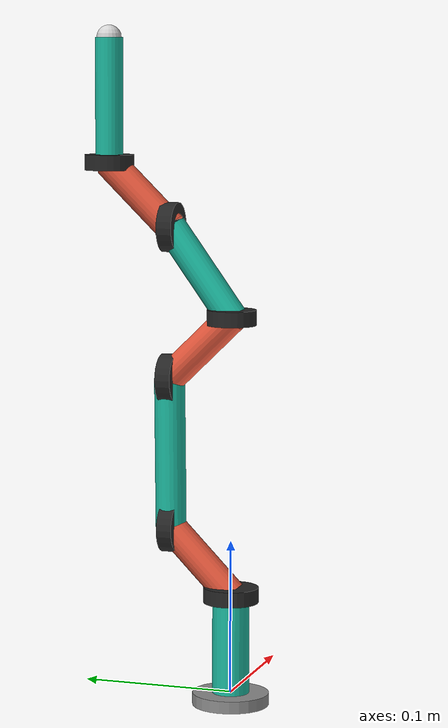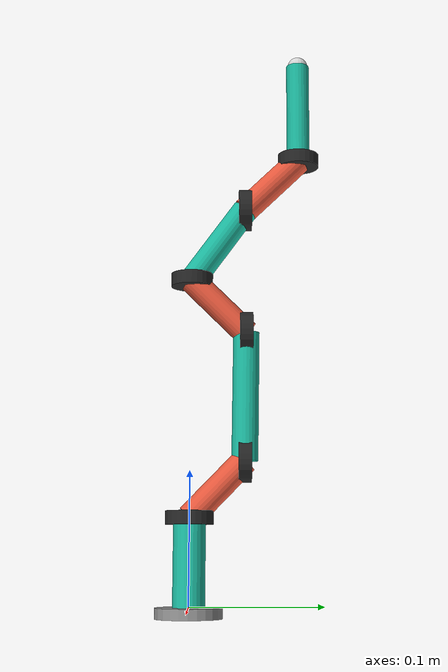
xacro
<?xml version="1.0"?>
<robot xmlns:xacro="http://www.ros.org/wiki/xacro" name="my_robot">
    <xacro:arg name="initial_positions_file" default="initial_positions.yaml" />

    <!-- Import my_robot urdf file -->
    <xacro:include filename="$(find my_robot_description)/urdf/my_robot.urdf" />

    <!-- Import control_xacro -->
    <xacro:include filename="my_robot.ros2_control.xacro" />

    <xacro:my_robot_ros2_control name="FakeSystem" initial_positions_file="$(arg initial_positions_file)"/>

</robot>

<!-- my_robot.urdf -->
<robot name="my_robot">

  <!-- ═══════════════════════════════════════════════════════════
       MATERIALS
  ═══════════════════════════════════════════════════════════ -->
  <material name="teal">   <color rgba="0.11 0.73 0.63 1.0"/> </material>
  <material name="coral">  <color rgba="0.91 0.35 0.24 1.0"/> </material>
  <material name="joint_disk"> <color rgba="0.15 0.15 0.15 1.0"/> </material>
  <material name="base_plate"> <color rgba="0.55 0.55 0.55 1.0"/> </material>
  <material name="ee_ball">    <color rgba="0.85 0.85 0.85 1.0"/> </material>

  <!-- ═══════════════════════════════════════════════════════════
       LINKS
  ═══════════════════════════════════════════════════════════ -->

  <!-- World / mounting frame -->
  <link name="base_link">
    <visual>
      <origin xyz="0 0 -0.004" rpy="0 0 0"/>
      <geometry><cylinder radius="0.025" length="0.008"/></geometry>
      <material name="base_plate"/>
    </visual>
    <collision>
      <origin xyz="0 0 -0.004" rpy="0 0 0"/>
      <geometry>
        <box size="0.05 0.05 0.008" />
      </geometry>
    </collision>
  </link>

  <link name="link0">
    <inertial>
      <mass value="0.10"/>
      <origin xyz="0 0 0.0325" rpy="0 0 0"/>
      <inertia ixx="1e-4" ixy="0" ixz="0" iyy="1e-4" iyz="0" izz="5e-5"/>
    </inertial>
    <!-- Column cylinder -->
    <visual>
      <origin xyz="0 0 0.0325" rpy="0 0 0"/>
      <geometry><cylinder radius="0.012" length="0.065"/></geometry>
      <material name="teal"/>
    </visual>
    <!-- Joint0 disk (top of column) -->
    <visual>
      <origin xyz="0 0 0.065" rpy="0 0 0"/>
      <geometry><cylinder radius="0.018" length="0.010"/></geometry>
      <material name="joint_disk"/>
    </visual>
    <collision>
      <origin xyz="0 0 0.035" rpy="0 0 0"/>
      <geometry>
        <box size="0.036 0.036 0.07" />
      </geometry>
    </collision>
  </link>

  <link name="link1">
    <inertial>
      <mass value="0.10"/>
      <origin xyz="0 0.0205 0.0210" rpy="0 0 0"/>
      <inertia ixx="1e-4" ixy="0" ixz="0" iyy="1e-4" iyz="0" izz="5e-5"/>
    </inertial>
    <!-- Arm cylinder -->
    <visual>
      <origin xyz="0 0.0205 0.0210" rpy="-0.77277 0 0"/>
      <geometry><cylinder radius="0.010" length="0.0587"/></geometry>
      <material name="coral"/>
    </visual>
    <!-- Joint1 disk — world axis is Y so disk lies in XZ plane, rpy=(π/2,0,0) -->
    <visual>
      <origin xyz="0 0.041 0.042" rpy="1.5708 0 0"/>
      <geometry><cylinder radius="0.016" length="0.010"/></geometry>
      <material name="joint_disk"/>
    </visual>
    <collision>
      <origin xyz="0 0.0205 0.0210" rpy="-0.77277 0 0"/>
      <geometry><cylinder radius="0.010" length="0.0587"/></geometry>
    </collision>
  </link>

  <link name="link2">
    <inertial>
      <mass value="0.10"/>
      <origin xyz="0 -0.0490 0.0005" rpy="0 0 0"/>
      <inertia ixx="1e-4" ixy="0" ixz="0" iyy="1e-4" iyz="0" izz="5e-5"/>
    </inertial>
    <visual>
      <origin xyz="0 -0.0490 0.0005" rpy="1.5600 0 0"/>
      <geometry><cylinder radius="0.010" length="0.0980"/></geometry>
      <material name="teal"/>
    </visual>
    <visual>
      <origin xyz="0 -0.098 0.001" rpy="0 0 0"/>
      <geometry><cylinder radius="0.016" length="0.010"/></geometry>
      <material name="joint_disk"/>
    </visual>
    <collision>
      <origin xyz="0 -0.0490 0.0005" rpy="1.5600 0 0"/>
      <geometry><cylinder radius="0.010" length="0.0980"/></geometry>
    </collision>
  </link>

  <link name="link3">
    <inertial>
      <mass value="0.10"/>
      <origin xyz="0 0.0205 0.0210" rpy="0 0 0"/>
      <inertia ixx="1e-4" ixy="0" ixz="0" iyy="1e-4" iyz="0" izz="5e-5"/>
    </inertial>
    <visual>
      <origin xyz="0 0.0205 0.0210" rpy="-0.77277 0 0"/>
      <geometry><cylinder radius="0.010" length="0.0587"/></geometry>
      <material name="coral"/>
    </visual>
    <visual>
      <origin xyz="0 0.041 0.042" rpy="1.5708 0 0"/>
      <geometry><cylinder radius="0.016" length="0.010"/></geometry>
      <material name="joint_disk"/>
    </visual>
    <collision>
      <origin xyz="0 0.0205 0.0210" rpy="-0.77277 0 0"/>
      <geometry><cylinder radius="0.010" length="0.0587"/></geometry>
    </collision>
  </link>

  <link name="link4">
    <inertial>
      <mass value="0.10"/>
      <origin xyz="0 0.0205 0.0285" rpy="0 0 0"/>
      <inertia ixx="1e-4" ixy="0" ixz="0" iyy="1e-4" iyz="0" izz="5e-5"/>
    </inertial>
    <visual>
      <origin xyz="0 0.0205 0.0285" rpy="-0.62345 0 0"/>
      <geometry><cylinder radius="0.010" length="0.0702"/></geometry>
      <material name="teal"/>
    </visual>
    <visual>
      <origin xyz="0 0.041 0.057" rpy="1.5708 0 0"/>
      <geometry><cylinder radius="0.016" length="0.010"/></geometry>
      <material name="joint_disk"/>
    </visual>
    <collision>
      <origin xyz="0 0.0205 0.0285" rpy="-0.62345 0 0"/>
      <geometry><cylinder radius="0.010" length="0.0702"/></geometry>
    </collision>
  </link>

  <link name="link5">
    <inertial>
      <mass value="0.10"/>
      <origin xyz="0 -0.0205 0.0210" rpy="0 0 0"/>
      <inertia ixx="1e-4" ixy="0" ixz="0" iyy="1e-4" iyz="0" izz="5e-5"/>
    </inertial>
    <visual>
      <origin xyz="0 -0.0205 0.0210" rpy="0.77277 0 0"/>
      <geometry><cylinder radius="0.010" length="0.0587"/></geometry>
      <material name="coral"/>
    </visual>
    <visual>
      <origin xyz="0 -0.041 0.042" rpy="1.5708 0 0"/>
      <geometry><cylinder radius="0.016" length="0.010"/></geometry>
      <material name="joint_disk"/>
    </visual>
    <collision>
      <origin xyz="0 -0.0205 0.0210" rpy="0.77277 0 0"/>
      <geometry><cylinder radius="0.010" length="0.0587"/></geometry>
    </collision>
  </link>

  <link name="link6">
    <inertial>
      <mass value="0.05"/>
      <origin xyz="0 0 0.040" rpy="0 0 0"/>
      <inertia ixx="1e-5" ixy="0" ixz="0" iyy="1e-5" iyz="0" izz="1e-5"/>
    </inertial>
    <visual>
      <origin xyz="0 0 0.040" rpy="0 0 0"/>
      <geometry><cylinder radius="0.009" length="0.080"/></geometry>
      <material name="teal"/>
    </visual>
    <collision>
      <origin xyz="0 0 0.040" rpy="0 0 0"/>
      <geometry><cylinder radius="0.009" length="0.080"/></geometry>
    </collision>
  </link>

  <!-- End-effector frame (tool0) -->
  <link name="tool0">
    <visual>
      <origin xyz="0 0 0" rpy="0 0 0"/>
      <geometry><sphere radius="0.008"/></geometry>
      <material name="ee_ball"/>
    </visual>
    <collision>
      <origin xyz="0 0 0" rpy="0 0 0"/>
      <geometry><sphere radius="0.008"/></geometry>
    </collision>
  </link>

  <!-- ═══════════════════════════════════════════════════════════
       JOINTS
  ═══════════════════════════════════════════════════════════ -->

  <joint name="base_to_link0" type="fixed">
    <parent link="base_link"/>
    <child link="link0"/>
    <origin xyz="0 0 0" rpy="0 0 0"/>
  </joint>

  <joint name="joint0" type="revolute">
    <parent link="link0"/>
    <child link="link1"/>
    <origin xyz="0 0 0.065" rpy="0 0 0"/>
    <axis xyz="0 0 1"/>
    <limit lower="-2.268928" upper="2.268928" effort="10.0" velocity="3.14159265"/>
    <dynamics damping="0.01" friction="0.0"/>
  </joint>

  <joint name="joint1" type="revolute">
    <parent link="link1"/>
    <child link="link2"/>
    <origin xyz="0 0.041 0.042" rpy="-1.57079632 0 0"/>
    <axis xyz="0 0 1"/>
    <limit lower="-2.268928" upper="2.268928" effort="10.0" velocity="3.14159265"/>
    <dynamics damping="0.01" friction="0.0"/>
  </joint>

  <joint name="joint2" type="revolute">
    <parent link="link2"/>
    <child link="link3"/>
    <origin xyz="0 -0.098 0.001" rpy="3.14159265 0 0"/>
    <axis xyz="0 0 1"/>
    <limit lower="-2.268928" upper="2.268928" effort="10.0" velocity="3.14159265"/>
    <dynamics damping="0.01" friction="0.0"/>
  </joint>

  <joint name="joint3" type="revolute">
    <parent link="link3"/>
    <child link="link4"/>
    <origin xyz="0 0.041 0.042" rpy="-1.57079632 0 0"/>
    <axis xyz="0 0 1"/>
    <limit lower="-2.268928" upper="2.268928" effort="10.0" velocity="3.14159265"/>
    <dynamics damping="0.01" friction="0.0"/>
  </joint>

  <joint name="joint4" type="revolute">
    <parent link="link4"/>
    <child link="link5"/>
    <origin xyz="0 0.041 0.057" rpy="-1.57079632 0 0"/>
    <axis xyz="0 0 1"/>
    <limit lower="-2.268928" upper="2.268928" effort="10.0" velocity="3.14159265"/>
    <dynamics damping="0.01" friction="0.0"/>
  </joint>

  <joint name="joint5" type="revolute">
    <parent link="link5"/>
    <child link="link6"/>
    <origin xyz="0 -0.041 0.042" rpy="1.57079632 0 0"/>
    <axis xyz="0 0 1"/>
    <limit lower="-3.14" upper="3.14" effort="10.0" velocity="3.14159265"/>
    <dynamics damping="0.01" friction="0.0"/>
  </joint>

  <joint name="joint6_ee" type="fixed">
    <parent link="link6"/>
    <child link="tool0"/>
    <origin xyz="0 0 0.08" rpy="0 0 3.14159265"/>
  </joint>

</robot>
